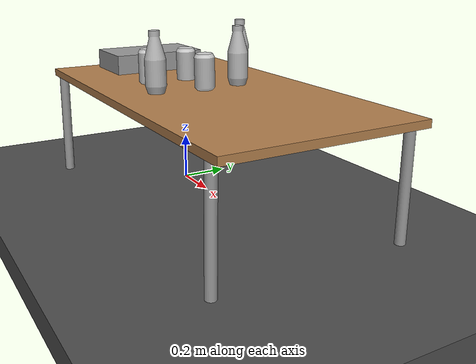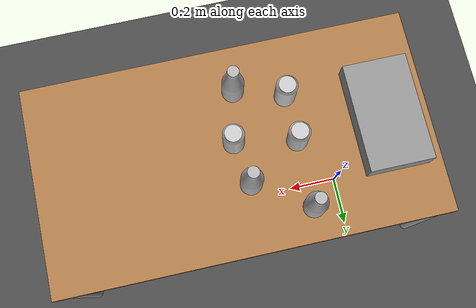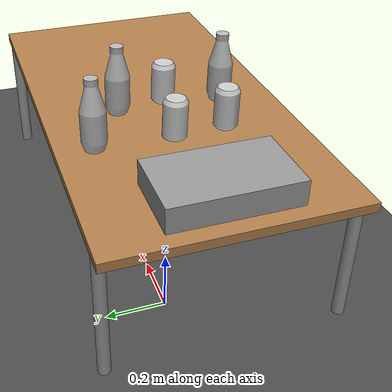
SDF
<sdf version="1.6">
 <world name="default">
  <light name="sun" type="directional">
   <pose>0 0 10 0 -0 0</pose>
   <diffuse>0.8 0.8 0.8 1</diffuse>
   <specular>0.2 0.2 0.2 1</specular>
   <attenuation>
    <range>1000</range>
    <constant>0.9</constant>
    <linear>0.01</linear>
    <quadratic>0.001</quadratic>
   </attenuation>
   <direction>-0.5 0.1 -0.9</direction>
  </light>
  <model name="ground_plane">
   <static>1</static>
   <link name="link">
    <collision name="collision">
     <geometry><plane><normal>0 0 1</normal><size>100 100</size></plane></geometry>
     <surface><friction><ode><mu>100</mu><mu2>50</mu2></ode></friction></surface>
    </collision>
    <visual name="visual">
     <cast_shadows>0</cast_shadows>
     <geometry><plane><normal>0 0 1</normal><size>100 100</size></plane></geometry>
     <material>
      <script><uri>file://media/materials/scripts/gazebo.material</uri><name>Gazebo/Grey</name></script>
     </material>
    </visual>
   </link>
  </model>
  <gravity>0 0 -9.8</gravity>
  <magnetic_field>6e-06 2.3e-05 -4.2e-05</magnetic_field>
  <atmosphere type="adiabatic"/>
  <physics name="default_physics" default="0" type="ode">
   <max_step_size>0.001</max_step_size>
   <real_time_factor>1</real_time_factor>
   <real_time_update_rate>1000</real_time_update_rate>
  </physics>
  <scene><ambient>0.4 0.4 0.4 1</ambient><background>0.7 0.7 0.7 1</background><shadows>1</shadows></scene>
  <audio><device>default</device></audio>
  <spherical_coordinates>
   <surface_model>EARTH_WGS84</surface_model>
   <latitude_deg>0</latitude_deg>
   <longitude_deg>0</longitude_deg>
   <elevation>0</elevation>
   <heading_deg>0</heading_deg>
  </spherical_coordinates>
  <model name="table">
   <static>1</static>
   <link name="link">
    <collision name="surface">
     <pose>0 0 0.5 0 -0 0</pose>
     <geometry><box><size>1.5 0.8 0.03</size></box></geometry>
     <surface><friction><ode><mu>0.6</mu><mu2>0.6</mu2></ode></friction></surface>
    </collision>
    <visual name="visual1">
     <pose>0 0 0.5 0 -0 0</pose>
     <geometry><box><size>1.5 0.8 0.03</size></box></geometry>
     <material>
      <script><uri>file://media/materials/scripts/gazebo.material</uri><name>Gazebo/Wood</name></script>
     </material>
    </visual>
    <collision name="front_left_leg">
     <pose>0.68 0.38 0.25 0 -0 0</pose>
     <geometry><cylinder><radius>0.02</radius><length>0.5</length></cylinder></geometry>
    </collision>
    <visual name="front_left_leg">
     <pose>0.68 0.38 0.25 0 -0 0</pose>
     <geometry><cylinder><radius>0.02</radius><length>0.5</length></cylinder></geometry>
     <material>
      <script><uri>file://media/materials/scripts/gazebo.material</uri><name>Gazebo/Grey</name></script>
     </material>
    </visual>
    <collision name="front_right_leg">
     <pose>0.68 -0.38 0.25 0 -0 0</pose>
     <geometry><cylinder><radius>0.02</radius><length>0.5</length></cylinder></geometry>
    </collision>
    <visual name="front_right_leg">
     <pose>0.68 -0.38 0.25 0 -0 0</pose>
     <geometry><cylinder><radius>0.02</radius><length>0.5</length></cylinder></geometry>
     <material>
      <script><uri>file://media/materials/scripts/gazebo.material</uri><name>Gazebo/Grey</name></script>
     </material>
    </visual>
    <collision name="back_right_leg">
     <pose>-0.68 -0.38 0.25 0 -0 0</pose>
     <geometry><cylinder><radius>0.02</radius><length>0.5</length></cylinder></geometry>
    </collision>
    <visual name="back_right_leg">
     <pose>-0.68 -0.38 0.25 0 -0 0</pose>
     <geometry><cylinder><radius>0.02</radius><length>0.5</length></cylinder></geometry>
     <material>
      <script><uri>file://media/materials/scripts/gazebo.material</uri><name>Gazebo/Grey</name></script>
     </material>
    </visual>
    <collision name="back_left_leg">
     <pose>-0.68 0.38 0.25 0 -0 0</pose>
     <geometry><cylinder><radius>0.02</radius><length>0.5</length></cylinder></geometry>
    </collision>
    <visual name="back_left_leg">
     <pose>-0.68 0.38 0.25 0 -0 0</pose>
     <geometry><cylinder><radius>0.02</radius><length>0.5</length></cylinder></geometry>
     <material>
      <script><uri>file://media/materials/scripts/gazebo.material</uri><name>Gazebo/Grey</name></script>
     </material>
    </visual>
   </link>
   <pose>0.436601 -0.112279 0 0 -0 0</pose>
  </model>
  <model name="asphalt_plane">
   <static>1</static>
   <link name="link">
    <collision name="collision"><geometry><box><size>20 20 0.1</size></box></geometry></collision>
    <visual name="visual">
     <cast_shadows>0</cast_shadows>
     <geometry><box><size>20 20 0.1</size></box></geometry>
     <material>
      <script>
       <uri>model://asphalt_plane/materials/scripts</uri>
       <uri>model://asphalt_plane/materials/textures</uri>
       <name>vrc/asphalt</name>
      </script>
     </material>
    </visual>
   </link>
   <pose>0.554171 0.738524 0 0 -0 0</pose>
  </model>
  <model name="Red Can">
   <static>0</static>
   <link name="link">
    <inertial>
     <mass>0.3</mass>
     <inertia>
      <ixx>0.00055575</ixx>
      <ixy>0</ixy>
      <ixz>0</ixz>
      <iyy>0.00055575</iyy>
      <iyz>0</iyz>
      <izz>0.0001755</izz>
     </inertia>
    </inertial>
    <collision name="collision">
     <geometry><mesh><uri>model://redCan/meshes/canRed.dae</uri><scale>0.04 0.04 0.04</scale></mesh></geometry>
     <surface>
      <friction><ode><mu>3</mu><mu2>3</mu2></ode></friction>
      <contact><ode><kp>1e+07</kp><kd>1</kd><min_depth>0.001</min_depth><max_vel>0.5</max_vel></ode></contact>
     </surface>
    </collision>
    <visual name="visual">
     <geometry><mesh><uri>model://redCan/meshes/canRed.dae</uri><scale>0.04 0.04 0.04</scale></mesh></geometry>
    </visual>
   </link>
   <pose>0.433251 -0.135894 0.587471 0.007625 -0.027398 1.52201</pose>
  </model>
  <model name="Green Can">
   <static>0</static>
   <link name="link">
    <inertial>
     <mass>0.3</mass>
     <inertia>
      <ixx>0.00055575</ixx>
      <ixy>0</ixy>
      <ixz>0</ixz>
      <iyy>0.00055575</iyy>
      <iyz>0</iyz>
      <izz>0.0001755</izz>
     </inertia>
    </inertial>
    <collision name="collision">
     <geometry><mesh><uri>model://greenCan/meshes/canGreen.dae</uri><scale>0.04 0.04 0.04</scale></mesh></geometry>
     <surface>
      <friction><ode><mu>3</mu><mu2>3</mu2></ode></friction>
      <contact><ode><kp>1e+07</kp><kd>1</kd><min_depth>0.001</min_depth><max_vel>0.5</max_vel></ode></contact>
     </surface>
    </collision>
    <visual name="visual">
     <geometry><mesh><uri>model://greenCan/meshes/canGreen.dae</uri><scale>0.04 0.04 0.04</scale></mesh></geometry>
    </visual>
   </link>
   <pose>0.205625 -0.272177 0.585309 0.009163 -0.013372 0.291065</pose>
  </model>
  <model name="Yellow Can">
   <static>0</static>
   <link name="link">
    <inertial>
     <mass>0.3</mass>
     <inertia>
      <ixx>0.00055575</ixx>
      <ixy>0</ixy>
      <ixz>0</ixz>
      <iyy>0.00055575</iyy>
      <iyz>0</iyz>
      <izz>0.0001755</izz>
     </inertia>
    </inertial>
    <collision name="collision">
     <geometry>
      <mesh><uri>model://yellowCan/meshes/canYellow.dae</uri><scale>0.04 0.04 0.04</scale></mesh>
     </geometry>
     <surface>
      <friction><ode><mu>3</mu><mu2>3</mu2></ode></friction>
      <contact><ode><kp>1e+07</kp><kd>1</kd><min_depth>0.001</min_depth><max_vel>0.5</max_vel></ode></contact>
     </surface>
    </collision>
    <visual name="visual">
     <geometry>
      <mesh><uri>model://yellowCan/meshes/canYellow.dae</uri><scale>0.04 0.04 0.04</scale></mesh>
     </geometry>
    </visual>
   </link>
   <pose>0.199766 -0.096888 0.576854 0.002705 -0.025726 1.57935</pose>
  </model>
  <model name="unit_box">
   <static>1</static>
   <pose>-0.139333 -0.111698 0.545396 0 -0 0</pose>
   <link name="link">
    <inertial>
     <mass>1</mass>
     <inertia>
      <ixx>0.166667</ixx>
      <ixy>0</ixy>
      <ixz>0</ixz>
      <iyy>0.166667</iyy>
      <iyz>0</iyz>
      <izz>0.166667</izz>
     </inertia>
    </inertial>
    <visual name="visual">
     <geometry><box><size>0.241277 0.407907 0.103712</size></box></geometry>
     <material>
      <script><name>Gazebo/Grey</name><uri>file://media/materials/scripts/gazebo.material</uri></script>
     </material>
    </visual>
   </link>
  </model>
  <model name="Blue Bottle">
   <static>0</static>
   <link name="link">
    <inertial>
     <mass>0.3</mass>
     <inertia>
      <ixx>0.00055575</ixx>
      <ixy>0</ixy>
      <ixz>0</ixz>
      <iyy>0.00055575</iyy>
      <iyz>0</iyz>
      <izz>0.0001755</izz>
     </inertia>
    </inertial>
    <collision name="collision">
     <geometry>
      <mesh><uri>model://blueBottle/meshes/bottleBlue.dae</uri><scale>0.041 0.041 0.041</scale></mesh>
     </geometry>
     <surface>
      <friction><ode><mu>3</mu><mu2>3</mu2></ode></friction>
      <contact><ode><kp>1e+07</kp><kd>1</kd><min_depth>0.001</min_depth><max_vel>0.5</max_vel></ode></contact>
     </surface>
    </collision>
    <visual name="visual">
     <geometry>
      <mesh><uri>model://blueBottle/meshes/bottleBlue.dae</uri><scale>0.041 0.041 0.041</scale></mesh>
     </geometry>
    </visual>
   </link>
   <pose>0.203377 0.162734 0.633414 0.007868 -0.014716 2.69075</pose>
  </model>
  <model name="Red Bottle">
   <static>0</static>
   <link name="link">
    <inertial>
     <mass>0.3</mass>
     <inertia>
      <ixx>0.00055575</ixx>
      <ixy>0</ixy>
      <ixz>0</ixz>
      <iyy>0.00055575</iyy>
      <iyz>0</iyz>
      <izz>0.0001755</izz>
     </inertia>
    </inertial>
    <collision name="collision">
     <geometry>
      <mesh><uri>model://redBottle/meshes/bottleRedBlue.dae</uri><scale>0.041 0.041 0.041</scale></mesh>
     </geometry>
     <surface>
      <friction><ode><mu>3</mu><mu2>3</mu2></ode></friction>
      <contact><ode><kp>1e+07</kp><kd>1</kd><min_depth>0.001</min_depth><max_vel>0.5</max_vel></ode></contact>
     </surface>
    </collision>
    <visual name="visual">
     <geometry>
      <mesh><uri>model://redBottle/meshes/bottleRedBlue.dae</uri><scale>0.041 0.041 0.041</scale></mesh>
     </geometry>
    </visual>
   </link>
   <pose>0.393529 -0.32621 0.633466 0.012975 -0.012974 -0.024125</pose>
  </model>
  <model name="Yellow Bottle">
   <static>0</static>
   <link name="link">
    <inertial>
     <mass>0.3</mass>
     <inertia>
      <ixx>0.00055575</ixx>
      <ixy>0</ixy>
      <ixz>0</ixz>
      <iyy>0.00055575</iyy>
      <iyz>0</iyz>
      <izz>0.0001755</izz>
     </inertia>
    </inertial>
    <collision name="collision">
     <geometry>
      <mesh><uri>model://yellowBottle/meshes/bottleYellowBlue.dae</uri><scale>0.041 0.041 0.041</scale></mesh>
     </geometry>
     <surface>
      <friction><ode><mu>3</mu><mu2>3</mu2></ode></friction>
      <contact><ode><kp>1e+07</kp><kd>1</kd><min_depth>0.001</min_depth><max_vel>0.5</max_vel></ode></contact>
     </surface>
    </collision>
    <visual name="visual">
     <geometry>
      <mesh><uri>model://yellowBottle/meshes/bottleYellowBlue.dae</uri><scale>0.041 0.041 0.041</scale></mesh>
     </geometry>
    </visual>
   </link>
   <pose>0.403784 0.031845 0.633414 0.007867 -0.014716 0.000212</pose>
  </model>
 </world>
</sdf>
